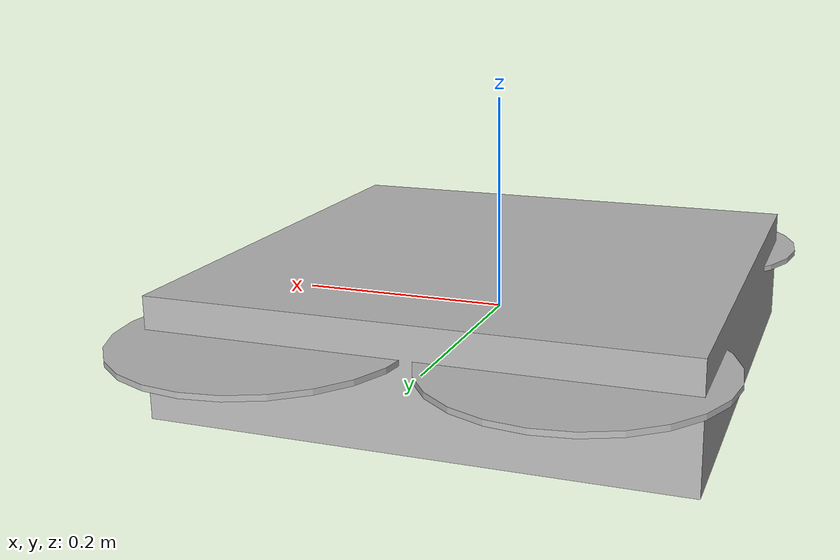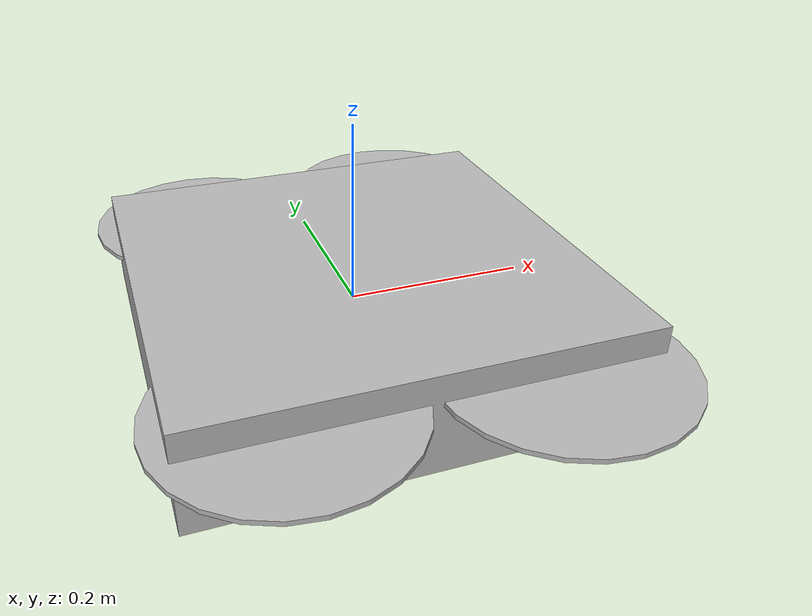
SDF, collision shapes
<?xml version='1.0'?>
<sdf version='1.5'>
  <model name='iris_fpv_cam'>

    <include>
      <uri>model://iris</uri>
    </include>

    <include>
      <uri>model://mb1240-xl-ez4</uri>
      <pose>0.2 0 0 0 0 0</pose>
    </include>
    <joint name="mb1240-xl-ez4_joint" type="fixed">
      <child>mb1240-xl-ez4::link</child>
      <parent>iris::base_link</parent>
      <axis>
        <xyz>0 0 1</xyz>
        <limit>
          <upper>0</upper>
          <lower>0</lower>
        </limit>
      </axis>
    </joint>

    <include>
      <uri>model://mb1240-xl-ez4-left</uri>
      <pose>0.2 0 0 0 0 0.5236</pose>
    </include>
    <joint name="mb1240-xl-ez4_joint_left" type="fixed">
      <child>mb1240-xl-ez4-left::link</child>
      <parent>iris::base_link</parent>
      <axis>
        <xyz>0 0 1</xyz>
        <limit>
          <upper>0</upper>
          <lower>0</lower>
        </limit>
      </axis>
    </joint>

    <include>
      <uri>model://mb1240-xl-ez4-right</uri>
      <pose>0.2 0 0 0 0 -0.5236</pose>
    </include>
    <joint name="mb1240-xl-ez4_joint_right" type="fixed">
      <child>mb1240-xl-ez4-right::link</child>
      <parent>iris::base_link</parent>
      <axis>
        <xyz>0 0 1</xyz>
        <limit>
          <upper>0</upper>
          <lower>0</lower>
        </limit>
      </axis>
    </joint>

  </model>
</sdf>

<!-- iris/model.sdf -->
<!-- DO NOT EDIT: Generated from iris.sdf.jinja -->
<sdf version='1.6'>
  <model name='iris'>
    <link name='base_link'>
      <pose>0 0 0 0 0 0</pose>
      <inertial>
        <pose>0 0 0 0 0 0</pose>
        <mass>1.5</mass>
        <inertia>
          <ixx>0.029125</ixx>
          <ixy>0</ixy>
          <ixz>0</ixz>
          <iyy>0.029125</iyy>
          <iyz>0</iyz>
          <izz>0.055225</izz>
        </inertia>
      </inertial>
      <collision name='base_link_inertia_collision'>
        <pose>0 0 0 0 0 0</pose>
        <geometry>
          <box>
            <size>0.47 0.47 0.11</size>
          </box>
        </geometry>
        <surface>
          <contact>
            <ode>
              <min_depth>0.001</min_depth>
              <max_vel>0</max_vel>
            </ode>
          </contact>
          <friction>
            <ode/>
          </friction>
        </surface>
      </collision>
      <visual name='base_link_inertia_visual'>
        <pose>0 0 0 0 0 0</pose>
        <geometry>
          <mesh>
            <scale>1 1 1</scale>
            <uri>model://iris/meshes/iris.stl</uri>
          </mesh>
        </geometry>
      </visual>
      <gravity>1</gravity>
      <velocity_decay/>
    </link>
    <link name='/imu_link'>
      <pose>0 0 0 0 0 0</pose>
      <inertial>
        <pose>0 0 0 0 0 0</pose>
        <mass>0.015</mass>
        <inertia>
          <ixx>1e-05</ixx>
          <ixy>0</ixy>
          <ixz>0</ixz>
          <iyy>1e-05</iyy>
          <iyz>0</iyz>
          <izz>1e-05</izz>
        </inertia>
      </inertial>
    </link>
    <joint name='/imu_joint' type='revolute'>
      <child>/imu_link</child>
      <parent>base_link</parent>
      <axis>
        <xyz>1 0 0</xyz>
        <limit>
          <lower>0</lower>
          <upper>0</upper>
          <effort>0</effort>
          <velocity>0</velocity>
        </limit>
        <dynamics>
          <spring_reference>0</spring_reference>
          <spring_stiffness>0</spring_stiffness>
        </dynamics>
        <use_parent_model_frame>1</use_parent_model_frame>
      </axis>
    </joint>
    <link name='rotor_0'>
      <pose>0.13 -0.22 0.023 0 0 0</pose>
      <inertial>
        <pose>0 0 0 0 0 0</pose>
        <mass>0.005</mass>
        <inertia>
          <ixx>9.75e-07</ixx>
          <ixy>0</ixy>
          <ixz>0</ixz>
          <iyy>0.000273104</iyy>
          <iyz>0</iyz>
          <izz>0.000274004</izz>
        </inertia>
      </inertial>
      <collision name='rotor_0_collision'>
        <pose>0 0 0 0 0 0</pose>
        <geometry>
          <cylinder>
            <length>0.005</length>
            <radius>0.128</radius>
          </cylinder>
        </geometry>
        <surface>
          <contact>
            <ode/>
          </contact>
          <friction>
            <ode/>
          </friction>
        </surface>
      </collision>
      <visual name='rotor_0_visual'>
        <pose>0 0 0 0 0 0</pose>
        <geometry>
          <mesh>
            <scale>1 1 1</scale>
            <uri>model://iris/meshes/iris_prop_ccw.dae</uri>
          </mesh>
        </geometry>
      </visual>
      <gravity>1</gravity>
      <velocity_decay/>
    </link>
    <joint name='rotor_0_joint' type='revolute'>
      <child>rotor_0</child>
      <parent>base_link</parent>
      <axis>
        <xyz>0 0 1</xyz>
        <limit>
          <lower>-1e+16</lower>
          <upper>1e+16</upper>
        </limit>
        <dynamics>
          <spring_reference>0</spring_reference>
          <spring_stiffness>0</spring_stiffness>
        </dynamics>
        <use_parent_model_frame>1</use_parent_model_frame>
      </axis>
    </joint>
    <link name='rotor_1'>
      <pose>-0.13 0.2 0.023 0 0 0</pose>
      <inertial>
        <pose>0 0 0 0 0 0</pose>
        <mass>0.005</mass>
        <inertia>
          <ixx>9.75e-07</ixx>
          <ixy>0</ixy>
          <ixz>0</ixz>
          <iyy>0.000273104</iyy>
          <iyz>0</iyz>
          <izz>0.000274004</izz>
        </inertia>
      </inertial>
      <collision name='rotor_1_collision'>
        <pose>0 0 0 0 0 0</pose>
        <geometry>
          <cylinder>
            <length>0.005</length>
            <radius>0.128</radius>
          </cylinder>
        </geometry>
        <surface>
          <contact>
            <ode/>
          </contact>
          <friction>
            <ode/>
          </friction>
        </surface>
      </collision>
      <visual name='rotor_1_visual'>
        <pose>0 0 0 0 0 0</pose>
        <geometry>
          <mesh>
            <scale>1 1 1</scale>
            <uri>model://iris/meshes/iris_prop_ccw.dae</uri>
          </mesh>
        </geometry>
      </visual>
      <gravity>1</gravity>
      <velocity_decay/>
    </link>
    <joint name='rotor_1_joint' type='revolute'>
      <child>rotor_1</child>
      <parent>base_link</parent>
      <axis>
        <xyz>0 0 1</xyz>
        <limit>
          <lower>-1e+16</lower>
          <upper>1e+16</upper>
        </limit>
        <dynamics>
          <spring_reference>0</spring_reference>
          <spring_stiffness>0</spring_stiffness>
        </dynamics>
        <use_parent_model_frame>1</use_parent_model_frame>
      </axis>
    </joint>
    <link name='rotor_2'>
      <pose>0.13 0.22 0.023 0 0 0</pose>
      <inertial>
        <pose>0 0 0 0 0 0</pose>
        <mass>0.005</mass>
        <inertia>
          <ixx>9.75e-07</ixx>
          <ixy>0</ixy>
          <ixz>0</ixz>
          <iyy>0.000273104</iyy>
          <iyz>0</iyz>
          <izz>0.000274004</izz>
        </inertia>
      </inertial>
      <collision name='rotor_2_collision'>
        <pose>0 0 0 0 0 0</pose>
        <geometry>
          <cylinder>
            <length>0.005</length>
            <radius>0.128</radius>
          </cylinder>
        </geometry>
        <surface>
          <contact>
            <ode/>
          </contact>
          <friction>
            <ode/>
          </friction>
        </surface>
      </collision>
      <visual name='rotor_2_visual'>
        <pose>0 0 0 0 0 0</pose>
        <geometry>
          <mesh>
            <scale>1 1 1</scale>
            <uri>model://iris/meshes/iris_prop_cw.dae</uri>
          </mesh>
        </geometry>
      </visual>
      <gravity>1</gravity>
      <velocity_decay/>
    </link>
    <joint name='rotor_2_joint' type='revolute'>
      <child>rotor_2</child>
      <parent>base_link</parent>
      <axis>
        <xyz>0 0 1</xyz>
        <limit>
          <lower>-1e+16</lower>
          <upper>1e+16</upper>
        </limit>
        <dynamics>
          <spring_reference>0</spring_reference>
          <spring_stiffness>0</spring_stiffness>
        </dynamics>
        <use_parent_model_frame>1</use_parent_model_frame>
      </axis>
    </joint>
    <link name='rotor_3'>
      <pose>-0.13 -0.2 0.023 0 0 0</pose>
      <inertial>
        <pose>0 0 0 0 0 0</pose>
        <mass>0.005</mass>
        <inertia>
          <ixx>9.75e-07</ixx>
          <ixy>0</ixy>
          <ixz>0</ixz>
          <iyy>0.000273104</iyy>
          <iyz>0</iyz>
          <izz>0.000274004</izz>
        </inertia>
      </inertial>
      <collision name='rotor_3_collision'>
        <pose>0 0 0 0 0 0</pose>
        <geometry>
          <cylinder>
            <length>0.005</length>
            <radius>0.128</radius>
          </cylinder>
        </geometry>
        <surface>
          <contact>
            <ode/>
          </contact>
          <friction>
            <ode/>
          </friction>
        </surface>
      </collision>
      <visual name='rotor_3_visual'>
        <pose>0 0 0 0 0 0</pose>
        <geometry>
          <mesh>
            <scale>1 1 1</scale>
            <uri>model://iris/meshes/iris_prop_cw.dae</uri>
          </mesh>
        </geometry>
      </visual>
      <gravity>1</gravity>
      <velocity_decay/>
    </link>
    <joint name='rotor_3_joint' type='revolute'>
      <child>rotor_3</child>
      <parent>base_link</parent>
      <axis>
        <xyz>0 0 1</xyz>
        <limit>
          <lower>-1e+16</lower>
          <upper>1e+16</upper>
        </limit>
        <dynamics>
          <spring_reference>0</spring_reference>
          <spring_stiffness>0</spring_stiffness>
        </dynamics>
        <use_parent_model_frame>1</use_parent_model_frame>
      </axis>
    </joint>
    <plugin name='rosbag' filename='libgazebo_multirotor_base_plugin.so'>
      <robotNamespace/>
      <linkName>base_link</linkName>
      <rotorVelocitySlowdownSim>10</rotorVelocitySlowdownSim>
    </plugin>
    <plugin name='front_right_motor_model' filename='libgazebo_motor_model.so'>
      <robotNamespace/>
      <jointName>rotor_0_joint</jointName>
      <linkName>rotor_0</linkName>
      <turningDirection>ccw</turningDirection>
      <timeConstantUp>0.0125</timeConstantUp>
      <timeConstantDown>0.025</timeConstantDown>
      <maxRotVelocity>1100</maxRotVelocity>
      <motorConstant>5.84e-06</motorConstant>
      <momentConstant>0.06</momentConstant>
      <commandSubTopic>/gazebo/command/motor_speed</commandSubTopic>
      <motorNumber>0</motorNumber>
      <rotorDragCoefficient>0.000175</rotorDragCoefficient>
      <rollingMomentCoefficient>1e-06</rollingMomentCoefficient>
      <motorSpeedPubTopic>/motor_speed/0</motorSpeedPubTopic>
      <rotorVelocitySlowdownSim>10</rotorVelocitySlowdownSim>
    </plugin>
    <plugin name='back_left_motor_model' filename='libgazebo_motor_model.so'>
      <robotNamespace/>
      <jointName>rotor_1_joint</jointName>
      <linkName>rotor_1</linkName>
      <turningDirection>ccw</turningDirection>
      <timeConstantUp>0.0125</timeConstantUp>
      <timeConstantDown>0.025</timeConstantDown>
      <maxRotVelocity>1100</maxRotVelocity>
      <motorConstant>5.84e-06</motorConstant>
      <momentConstant>0.06</momentConstant>
      <commandSubTopic>/gazebo/command/motor_speed</commandSubTopic>
      <motorNumber>1</motorNumber>
      <rotorDragCoefficient>0.000175</rotorDragCoefficient>
      <rollingMomentCoefficient>1e-06</rollingMomentCoefficient>
      <motorSpeedPubTopic>/motor_speed/1</motorSpeedPubTopic>
      <rotorVelocitySlowdownSim>10</rotorVelocitySlowdownSim>
    </plugin>
    <plugin name='front_left_motor_model' filename='libgazebo_motor_model.so'>
      <robotNamespace/>
      <jointName>rotor_2_joint</jointName>
      <linkName>rotor_2</linkName>
      <turningDirection>cw</turningDirection>
      <timeConstantUp>0.0125</timeConstantUp>
      <timeConstantDown>0.025</timeConstantDown>
      <maxRotVelocity>1100</maxRotVelocity>
      <motorConstant>5.84e-06</motorConstant>
      <momentConstant>0.06</momentConstant>
      <commandSubTopic>/gazebo/command/motor_speed</commandSubTopic>
      <motorNumber>2</motorNumber>
      <rotorDragCoefficient>0.000175</rotorDragCoefficient>
      <rollingMomentCoefficient>1e-06</rollingMomentCoefficient>
      <motorSpeedPubTopic>/motor_speed/2</motorSpeedPubTopic>
      <rotorVelocitySlowdownSim>10</rotorVelocitySlowdownSim>
    </plugin>
    <plugin name='back_right_motor_model' filename='libgazebo_motor_model.so'>
      <robotNamespace/>
      <jointName>rotor_3_joint</jointName>
      <linkName>rotor_3</linkName>
      <turningDirection>cw</turningDirection>
      <timeConstantUp>0.0125</timeConstantUp>
      <timeConstantDown>0.025</timeConstantDown>
      <maxRotVelocity>1100</maxRotVelocity>
      <motorConstant>5.84e-06</motorConstant>
      <momentConstant>0.06</momentConstant>
      <commandSubTopic>/gazebo/command/motor_speed</commandSubTopic>
      <motorNumber>3</motorNumber>
      <rotorDragCoefficient>0.000175</rotorDragCoefficient>
      <rollingMomentCoefficient>1e-06</rollingMomentCoefficient>
      <motorSpeedPubTopic>/motor_speed/3</motorSpeedPubTopic>
      <rotorVelocitySlowdownSim>10</rotorVelocitySlowdownSim>
    </plugin>
    <model name='gps0'>
      <link name='link'>
        <pose>0 0 0 0 0 0</pose>
        <inertial>
          <pose>0 0 0 0 0 0</pose>
          <mass>0.01</mass>
          <inertia>
            <ixx>2.1733e-06</ixx>
            <ixy>0</ixy>
            <ixz>0</ixz>
            <iyy>2.1733e-06</iyy>
            <iyz>0</iyz>
            <izz>1.8e-07</izz>
          </inertia>
        </inertial>
        <visual name='visual'>
          <geometry>
            <cylinder>
              <radius>0.01</radius>
              <length>0.002</length>
            </cylinder>
          </geometry>
        </visual>
        <sensor name='gps' type='gps'>
          <pose>0 0 0 0 0 0</pose>
          <plugin name='gps_plugin' filename='libgazebo_gps_plugin.so'>
            <robotNamespace/>
            <gpsNoise>1</gpsNoise>
            <gpsXYRandomWalk>2.0</gpsXYRandomWalk>
            <gpsZRandomWalk>4.0</gpsZRandomWalk>
            <gpsXYNoiseDensity>0.0002</gpsXYNoiseDensity>
            <gpsZNoiseDensity>0.0004</gpsZNoiseDensity>
            <gpsVXYNoiseDensity>0.2</gpsVXYNoiseDensity>
            <gpsVZNoiseDensity>0.4</gpsVZNoiseDensity>
          </plugin>
        </sensor>
      </link>
    </model>
    <joint name='gps0_joint' type='fixed'>
      <parent>base_link</parent>
      <child>gps0::link</child>
    </joint>
    <plugin name='groundtruth_plugin' filename='libgazebo_groundtruth_plugin.so'>
      <robotNamespace/>
    </plugin>
    <plugin name='magnetometer_plugin' filename='libgazebo_magnetometer_plugin.so'>
      <robotNamespace/>
      <pubRate>100</pubRate>
      <noiseDensity>0.0004</noiseDensity>
      <randomWalk>6.4e-06</randomWalk>
      <biasCorrelationTime>600</biasCorrelationTime>
      <magTopic>/mag</magTopic>
    </plugin>
    <plugin name='barometer_plugin' filename='libgazebo_barometer_plugin.so'>
      <robotNamespace/>
      <pubRate>50</pubRate>
      <baroTopic>/baro</baroTopic>
      <baroDriftPaPerSec>0</baroDriftPaPerSec>
    </plugin>
    <plugin name='mavlink_interface' filename='libgazebo_mavlink_interface.so'>
      <robotNamespace/>
      <imuSubTopic>/imu</imuSubTopic>
      <magSubTopic>/mag</magSubTopic>
      <baroSubTopic>/baro</baroSubTopic>
      <mavlink_addr>INADDR_ANY</mavlink_addr>
      <mavlink_tcp_port>{{ mavlink_tcp_port }}</mavlink_tcp_port>
      <mavlink_udp_port>{{ mavlink_udp_port }}</mavlink_udp_port>
      <serialEnabled>{{ serial_enabled }}</serialEnabled>
      <serialDevice>{{ serial_device }}</serialDevice>
      <baudRate>{{ serial_baudrate }}</baudRate>
      <qgc_addr>INADDR_ANY</qgc_addr>
      <qgc_udp_port>14550</qgc_udp_port>
      <sdk_addr>INADDR_ANY</sdk_addr>
      <sdk_udp_port>14540</sdk_udp_port>
      <hil_mode>{{ hil_mode }}</hil_mode>
      <hil_state_level>0</hil_state_level>
      <send_vision_estimation>0</send_vision_estimation>
      <send_odometry>1</send_odometry>
      <enable_lockstep>1</enable_lockstep>
      <use_tcp>1</use_tcp>
      <motorSpeedCommandPubTopic>/gazebo/command/motor_speed</motorSpeedCommandPubTopic>
      <control_channels>
        <channel name='rotor1'>
          <input_index>0</input_index>
          <input_offset>0</input_offset>
          <input_scaling>1000</input_scaling>
          <zero_position_disarmed>0</zero_position_disarmed>
          <zero_position_armed>100</zero_position_armed>
          <joint_control_type>velocity</joint_control_type>
        </channel>
        <channel name='rotor2'>
          <input_index>1</input_index>
          <input_offset>0</input_offset>
          <input_scaling>1000</input_scaling>
          <zero_position_disarmed>0</zero_position_disarmed>
          <zero_position_armed>100</zero_position_armed>
          <joint_control_type>velocity</joint_control_type>
        </channel>
        <channel name='rotor3'>
          <input_index>2</input_index>
          <input_offset>0</input_offset>
          <input_scaling>1000</input_scaling>
          <zero_position_disarmed>0</zero_position_disarmed>
          <zero_position_armed>100</zero_position_armed>
          <joint_control_type>velocity</joint_control_type>
        </channel>
        <channel name='rotor4'>
          <input_index>3</input_index>
          <input_offset>0</input_offset>
          <input_scaling>1000</input_scaling>
          <zero_position_disarmed>0</zero_position_disarmed>
          <zero_position_armed>100</zero_position_armed>
          <joint_control_type>velocity</joint_control_type>
        </channel>
        <channel name='rotor5'>
          <input_index>4</input_index>
          <input_offset>1</input_offset>
          <input_scaling>324.6</input_scaling>
          <zero_position_disarmed>0</zero_position_disarmed>
          <zero_position_armed>0</zero_position_armed>
          <joint_control_type>velocity</joint_control_type>
          <joint_control_pid>
            <p>0.1</p>
            <i>0</i>
            <d>0</d>
            <iMax>0.0</iMax>
            <iMin>0.0</iMin>
            <cmdMax>2</cmdMax>
            <cmdMin>-2</cmdMin>
          </joint_control_pid>
          <joint_name>zephyr_delta_wing::propeller_joint</joint_name>
        </channel>
        <channel name='rotor6'>
          <input_index>5</input_index>
          <input_offset>0</input_offset>
          <input_scaling>0.524</input_scaling>
          <zero_position_disarmed>0</zero_position_disarmed>
          <zero_position_armed>0</zero_position_armed>
          <joint_control_type>position</joint_control_type>
          <joint_name>zephyr_delta_wing::flap_left_joint</joint_name>
          <joint_control_pid>
            <p>10.0</p>
            <i>0</i>
            <d>0</d>
            <iMax>0</iMax>
            <iMin>0</iMin>
            <cmdMax>20</cmdMax>
            <cmdMin>-20</cmdMin>
          </joint_control_pid>
        </channel>
        <channel name='rotor7'>
          <input_index>6</input_index>
          <input_offset>0</input_offset>
          <input_scaling>0.524</input_scaling>
          <zero_position_disarmed>0</zero_position_disarmed>
          <zero_position_armed>0</zero_position_armed>
          <joint_control_type>position</joint_control_type>
          <joint_name>zephyr_delta_wing::flap_right_joint</joint_name>
          <joint_control_pid>
            <p>10.0</p>
            <i>0</i>
            <d>0</d>
            <iMax>0</iMax>
            <iMin>0</iMin>
            <cmdMax>20</cmdMax>
            <cmdMin>-20</cmdMin>
          </joint_control_pid>
        </channel>
        <channel name='rotor8'>
          <input_index>7</input_index>
          <input_offset>0</input_offset>
          <input_scaling>0.524</input_scaling>
          <zero_position_disarmed>0</zero_position_disarmed>
          <zero_position_armed>0</zero_position_armed>
          <joint_control_type>position</joint_control_type>
        </channel>
      </control_channels>
    </plugin>
    <static>0</static>
    <plugin name='rotors_gazebo_imu_plugin' filename='libgazebo_imu_plugin.so'>
      <robotNamespace/>
      <linkName>/imu_link</linkName>
      <imuTopic>/imu</imuTopic>
      <gyroscopeNoiseDensity>0.00018665</gyroscopeNoiseDensity>
      <gyroscopeRandomWalk>3.8785e-05</gyroscopeRandomWalk>
      <gyroscopeBiasCorrelationTime>1000.0</gyroscopeBiasCorrelationTime>
      <gyroscopeTurnOnBiasSigma>0.0087</gyroscopeTurnOnBiasSigma>
      <accelerometerNoiseDensity>0.00186</accelerometerNoiseDensity>
      <accelerometerRandomWalk>0.006</accelerometerRandomWalk>
      <accelerometerBiasCorrelationTime>300.0</accelerometerBiasCorrelationTime>
      <accelerometerTurnOnBiasSigma>0.196</accelerometerTurnOnBiasSigma>
    </plugin>
  </model>
</sdf>

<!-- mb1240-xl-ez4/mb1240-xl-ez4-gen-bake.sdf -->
<sdf version="1.5">

  <model name="mb1240-xl-ez4">

    <link name="link">

      <inertial>
        <mass>0.005</mass>
        <inertia>
          <ixx>3.33333333333e-07</ixx>
          <iyy>3.33333333333e-07</iyy>
          <izz>3.33333333333e-07</izz>
        </inertia>
      </inertial>

      <visual name="visual">
        <geometry>
          <box>
            <size>0.02 0.02 0.02</size>
          </box>
        </geometry>
        <material>
            <script>
              <uri>file://media/materials/scripts/gazebo.material</uri>
              <name>Gazebo/Grey</name>
            </script>
        </material>
      </visual>

      <collision name="collision">
        <geometry>
          <box>
            <size>0.02 0.02 0.02</size>
          </box>
        </geometry>
      </collision>

      <sensor name="sonar" type="sonar">
        <pose>0 0 0 0 -1.5707963259 0</pose>
        <sonar>
          <min>0</min>
          <max>2.00</max>
          <radius>0.3</radius>
        </sonar>
        <plugin name="SonarPlugin" filename="gazebo_sonar_plugin.cpp">
          <robotNamespace></robotNamespace>
          <topicName>/mb12</topicName>
        </plugin>
        <always_on>1</always_on>
        <update_rate>30</update_rate>
        <visualize>true</visualize>
      </sensor>

    </link>

  </model>

</sdf>

<!-- vim: set et ft=xml fenc=utf-8 ff=unix sts=0 sw=2 ts=2 : -->

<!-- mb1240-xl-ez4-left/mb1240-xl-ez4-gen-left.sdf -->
<sdf version="1.5">

  <model name="mb1240-xl-ez4-left">

    <link name="link">

      <inertial>
        <mass>0.005</mass>
        <inertia>
          <ixx>3.33333333333e-07</ixx>
          <iyy>3.33333333333e-07</iyy>
          <izz>3.33333333333e-07</izz>
        </inertia>
      </inertial>

      <visual name="visual">
        <geometry>
          <box>
            <size>0.02 0.02 0.02</size>
          </box>
        </geometry>
        <material>
            <script>
              <uri>file://media/materials/scripts/gazebo.material</uri>
              <name>Gazebo/Grey</name>
            </script>
        </material>
      </visual>

      <collision name="collision">
        <geometry>
          <box>
            <size>0.02 0.02 0.02</size>
          </box>
        </geometry>
      </collision>

      <sensor type="ray" name="sonar">
        <pose>0 0 0 0 0 0</pose>
        <visualize>true</visualize>
        <update_rate>50</update_rate>
        <ray>
          <scan>
            <horizontal>
              <samples>10</samples>
              <resolution>1</resolution>
              <min_angle>-0.1</min_angle>
              <max_angle>0.1</max_angle>
            </horizontal>
            <vertical>
              <samples>10</samples>
              <resolution>1</resolution>
              <min_angle>0</min_angle>
              <max_angle>0</max_angle>
            </vertical>
          </scan>
          <range>
            <min>0.05</min>
            <max>4</max>
            <resolution>0.02</resolution>
          </range>
        </ray>
        <plugin filename="libgazebo_ros_range.so" name="gazebo_ros_range">
          <gaussianNoise>0.005</gaussianNoise>
          <alwaysOn>true</alwaysOn>
          <updateRate>50</updateRate>
          <topicName>sonar_left</topicName>
          <frameName>sonar_link</frameName>
          <radiation>ultrasound</radiation>
          <fov>0.1</fov>
        </plugin>
      </sensor>

    </link>

  </model>

</sdf>

<!-- vim: set et ft=xml fenc=utf-8 ff=unix sts=0 sw=2 ts=2 : -->

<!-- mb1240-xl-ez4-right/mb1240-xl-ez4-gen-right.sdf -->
<sdf version="1.5">

  <model name="mb1240-xl-ez4-right">

    <link name="link">

      <inertial>
        <mass>0.005</mass>
        <inertia>
          <ixx>3.33333333333e-07</ixx>
          <iyy>3.33333333333e-07</iyy>
          <izz>3.33333333333e-07</izz>
        </inertia>
      </inertial>

      <visual name="visual">
        <geometry>
          <box>
            <size>0.02 0.02 0.02</size>
          </box>
        </geometry>
        <material>
            <script>
              <uri>file://media/materials/scripts/gazebo.material</uri>
              <name>Gazebo/Grey</name>
            </script>
        </material>
      </visual>

      <collision name="collision">
        <geometry>
          <box>
            <size>0.02 0.02 0.02</size>
          </box>
        </geometry>
      </collision>

      <sensor type="ray" name="sonar">
        <pose>0 0 0 0 0 0</pose>
        <visualize>true</visualize>
        <update_rate>50</update_rate>
        <ray>
          <scan>
            <horizontal>
              <samples>10</samples>
              <resolution>1</resolution>
              <min_angle>-0.1</min_angle>
              <max_angle>0.1</max_angle>
            </horizontal>
            <vertical>
              <samples>10</samples>
              <resolution>1</resolution>
              <min_angle>0</min_angle>
              <max_angle>0</max_angle>
            </vertical>
          </scan>
          <range>
            <min>0.05</min>
            <max>4</max>
            <resolution>0.02</resolution>
          </range>
        </ray>
        <plugin filename="libgazebo_ros_range.so" name="gazebo_ros_range">
          <gaussianNoise>0.005</gaussianNoise>
          <alwaysOn>true</alwaysOn>
          <updateRate>50</updateRate>
          <topicName>sonar_right</topicName>
          <frameName>sonar_link</frameName>
          <radiation>ultrasound</radiation>
          <fov>0.1</fov>
        </plugin>
      </sensor>

    </link>

  </model>

</sdf>

<!-- vim: set et ft=xml fenc=utf-8 ff=unix sts=0 sw=2 ts=2 : -->
